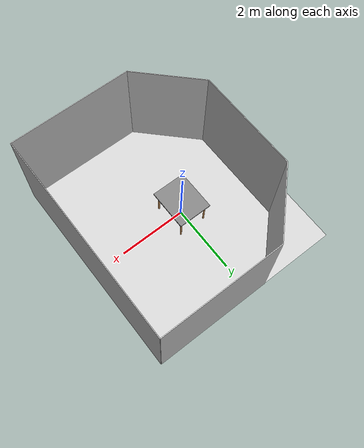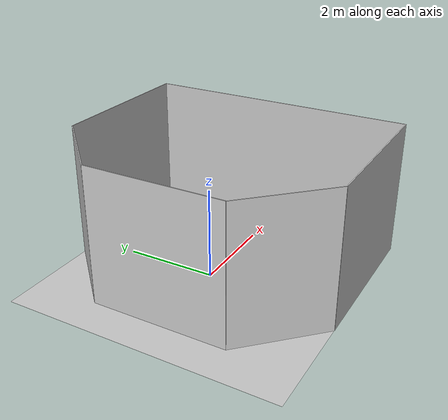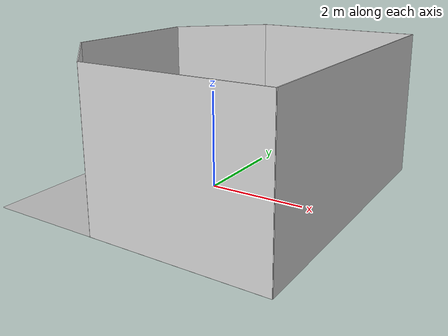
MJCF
<mujoco model="table_arena">
  <compiler angle="radian" inertiagrouprange="0 0" autolimits="true" />
  <asset>
    <texture builtin="gradient" height="256" rgb1=".9 .9 1." rgb2=".2 .3 .4" type="skybox" width="256" />
    <texture file="../assets/textures/light-gray-floor-tile.png" type="2d" name="texplane" />
    <material name="floorplane" reflectance="0.0" shininess="0.0" specular="0.0" texrepeat="3 3" texture="texplane" texuniform="true" />
    <texture file="../assets/textures/martin_novak_wood_table.png" type="cube" name="tex-table" />
    <material name="table_texture" reflectance="0.0" shininess="0.0" specular="0.2" texrepeat="1 1" texture="tex-table" />
    <texture file="../assets/textures/martin_novak_wood_table.png" type="cube" name="tex-table-legs" />
    <material name="table_legs" reflectance="0.8" shininess="0.8" texrepeat="1 1" texture="tex-table-legs" />
    <texture file="../assets/textures/light-gray-plaster.png" type="2d" name="tex-wall" />
    <material name="walls_mat" reflectance="0.0" shininess="0.1" specular="0.8" texrepeat="3 3" texture="tex-wall" texuniform="true" />
    <texture name="textable" builtin="flat" height="512" width="512" rgb1="0.5 0.5 0.5" rgb2="0.5 0.5 0.5" />
    <material name="table_mat" texture="textable" />
  </asset>
  <worldbody>
    <geom condim="3" group="1" material="floorplane" name="floor" pos="0 0 0" size="3 3 .125" type="plane" />
    <geom pos="-1.25 2.25 1.5" quat="0.6532815 0.6532815 0.2705981 0.2705981" size="1.06 1.5 0.01" type="box" conaffinity="0" contype="0" group="1" name="wall_leftcorner_visual" material="walls_mat" />
    <geom pos="-1.25 -2.25 1.5" quat="0.6532815 0.6532815 -0.2705981 -0.2705981" size="1.06 1.5 0.01" type="box" conaffinity="0" contype="0" group="1" name="wall_rightcorner_visual" material="walls_mat" />
    <geom pos="1.25 3 1.5" quat="0.7071 0.7071 0 0" size="1.75 1.5 0.01" type="box" conaffinity="0" contype="0" group="1" name="wall_left_visual" material="walls_mat" />
    <geom pos="1.25 -3 1.5" quat="0.7071 -0.7071 0 0" size="1.75 1.5 0.01" type="box" conaffinity="0" contype="0" group="1" name="wall_right_visual" material="walls_mat" />
    <geom pos="-2 0 1.5" quat="0.5 0.5 0.5 0.5" size="1.5 1.5 0.01" type="box" conaffinity="0" contype="0" group="1" name="wall_rear_visual" material="walls_mat" />
    <geom pos="3 0 1.5" quat="0.5 0.5 -0.5 -0.5" size="3 1.5 0.01" type="box" conaffinity="0" contype="0" group="1" name="wall_front_visual" material="walls_mat" />
    <body name="table" pos="0.0 0.0 0.875">
      <geom pos="0 0 0" size="0.5 0.6 0.025" type="box" group="0" name="table_collision" friction="0.6 0.005 0.0001" />
      <geom pos="0 0 0" size="0.5 0.6 0.025" type="box" conaffinity="0" contype="0" group="1" name="table_visual" material="table_texture" />
      <site pos="0.0 0.0 0.025" name="table_top" size="0.001 0.001 0.001" rgba="0 0 0 0" />
      <geom pos="0.4 0.5 -0.4375" size="0.025 0.4375" type="cylinder" conaffinity="0" contype="0" group="1" name="table_leg1_visual" material="table_legs" />
      <geom pos="-0.4 0.5 -0.4375" size="0.025 0.4375" type="cylinder" conaffinity="0" contype="0" group="1" name="table_leg2_visual" material="table_legs" />
      <geom pos="-0.4 -0.5 -0.4375" size="0.025 0.4375" type="cylinder" conaffinity="0" contype="0" group="1" name="table_leg3_visual" material="table_legs" />
      <geom pos="0.4 -0.5 -0.4375" size="0.025 0.4375" type="cylinder" conaffinity="0" contype="0" group="1" name="table_leg4_visual" material="table_legs" />
    </body>
    <light name="light1" diffuse=".8 .8 .8" dir="0 -.15 -1" directional="false" pos="1 1 4.0" specular="0.3 0.3 0.3" castshadow="false" />
    <light name="light2" diffuse=".8 .8 .8" dir="0 -.15 -1" directional="false" pos="-3. -3. 4.0" specular="0.3 0.3 0.3" castshadow="false" />
    <camera mode="fixed" name="frontview" pos="1.0 0.0 1.48" quat="0.56 0.43 0.43 0.56" />
    <camera mode="fixed" name="birdview" pos="-0.2 0 3.0" quat="0.7071 0 0 0.7071" />
    <camera mode="fixed" name="agentview" pos="0.6586131746834771 0.0 1.6103500240372424" quat="0.6380177736282349 0.3048497438430786 0.30484986305236816 0.6380177736282349" />
    <camera mode="fixed" name="sideview" pos="-0.05651774593317116 1.2761224129427358 1.4879572214102434" quat="0.009905065491771751 0.006877963156909582 0.5912228352893879 0.806418094001364" />
    <site name="workspace" pos="0.0 0.0 0.9" size="0.001" rgba="0 0 0 0" />
    <site name="zone_plane" pos="0.0 0.0 0.895" size="0.001" rgba="0 0 0 0" />
  </worldbody>
</mujoco>
